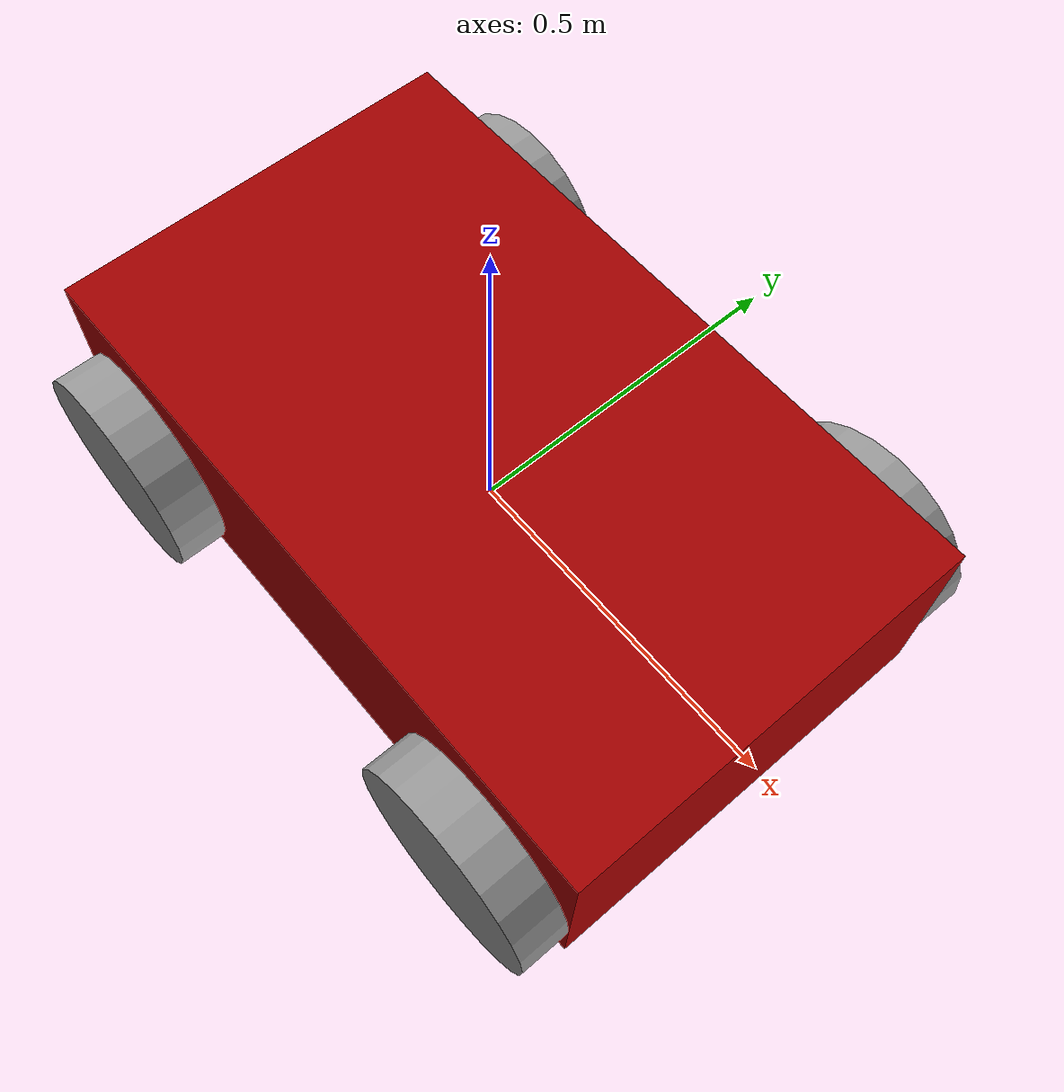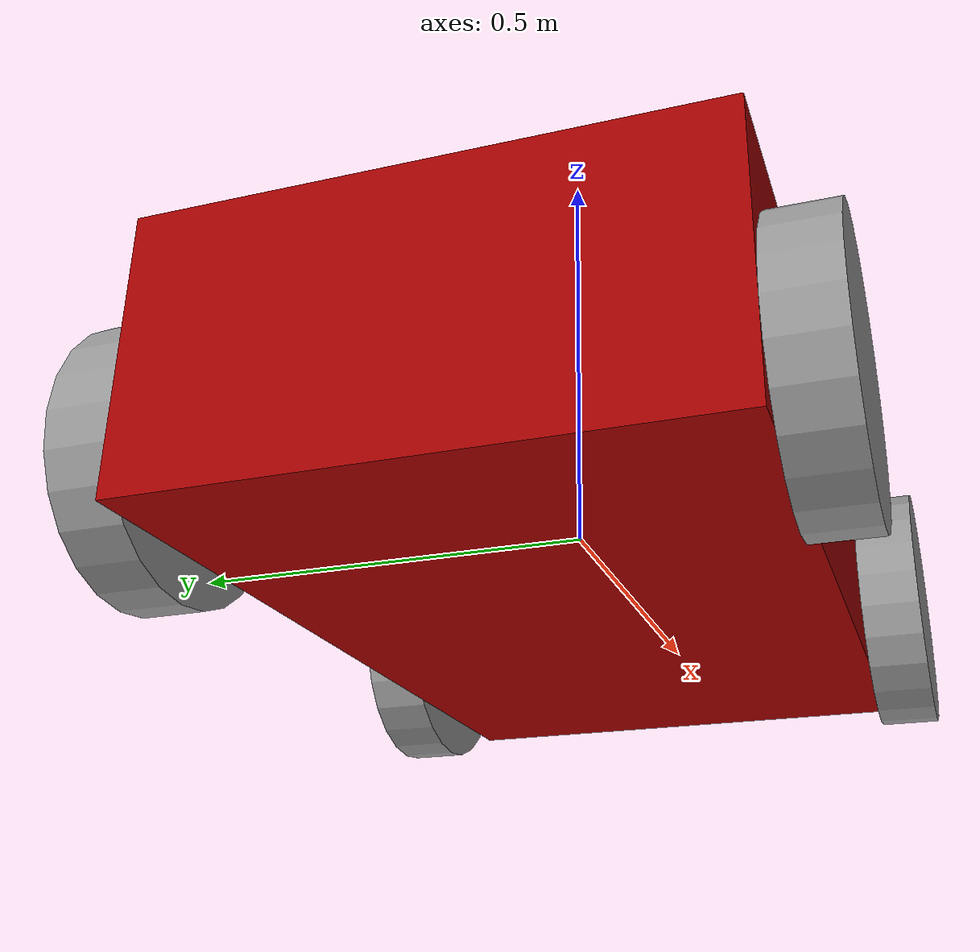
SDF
<?xml version='1.0'?>
<sdf version='1.7'>
  <model name='robot_model'>
    <link name='link_0'>
      <inertial>
        <mass>1175</mass>
        <inertia>
          <ixx>195.834</ixx>
          <ixy>0</ixy>
          <ixz>0</ixz>
          <iyy>195.834</iyy>
          <iyz>0</iyz>
          <izz>195.834</izz>
        </inertia>
        <pose>0 0 0 0 -0 0</pose>
      </inertial>
      <pose>0 0 0.04 0 -0 0</pose>
      <gravity>1</gravity>
      <self_collide>0</self_collide>
      <kinematic>0</kinematic>
      <enable_wind>0</enable_wind>
      <visual name='visual'>
        <pose>0 0 0 0 -0 0</pose>
        <geometry>
          <box>
            <size>1 0.6 0.3</size>
          </box>
        </geometry>
        <material>
          <lighting>1</lighting>
          <script>
            <uri>file://media/materials/scripts/gazebo.material</uri>
            <name>Gazebo/Grey</name>
          </script>
          <shader type='pixel'>
            <normal_map>__default__</normal_map>
          </shader>
          <ambient>1 1 1 1</ambient>
          <diffuse>0.643 0 0 1</diffuse>
          <specular>1 1 1 1</specular>
          <emissive>1 1 1 1</emissive>
        </material>
        <transparency>0</transparency>
        <cast_shadows>1</cast_shadows>
      </visual>
      <collision name='collision'>
        <laser_retro>0</laser_retro>
        <max_contacts>10</max_contacts>
        <pose>0 0 0 0 -0 0</pose>
        <geometry>
          <box>
            <size>1 0.6 0.3</size>
          </box>
        </geometry>
        <surface>
          <friction>
            <ode>
              <mu>1</mu>
              <mu2>1</mu2>
              <fdir1>0 0 0</fdir1>
              <slip1>0</slip1>
              <slip2>0</slip2>
            </ode>
            <torsional>
              <coefficient>1</coefficient>
              <patch_radius>0</patch_radius>
              <surface_radius>0</surface_radius>
              <use_patch_radius>1</use_patch_radius>
              <ode>
                <slip>0</slip>
              </ode>
            </torsional>
          </friction>
          <bounce>
            <restitution_coefficient>0</restitution_coefficient>
            <threshold>1e+06</threshold>
          </bounce>
          <contact>
            <collide_without_contact>0</collide_without_contact>
            <collide_without_contact_bitmask>1</collide_without_contact_bitmask>
            <collide_bitmask>1</collide_bitmask>
            <ode>
              <soft_cfm>0</soft_cfm>
              <soft_erp>0.2</soft_erp>
              <kp>1e+13</kp>
              <kd>1</kd>
              <max_vel>0.01</max_vel>
              <min_depth>0</min_depth>
            </ode>
            <bullet>
              <split_impulse>1</split_impulse>
              <split_impulse_penetration_threshold>-0.01</split_impulse_penetration_threshold>
              <soft_cfm>0</soft_cfm>
              <soft_erp>0.2</soft_erp>
              <kp>1e+13</kp>
              <kd>1</kd>
            </bullet>
          </contact>
        </surface>
      </collision>
    </link>
    <link name='link_2_clone'>
      <inertial>
        <mass>1</mass>
        <inertia>
          <ixx>0.145833</ixx>
          <ixy>0</ixy>
          <ixz>0</ixz>
          <iyy>0.145833</iyy>
          <iyz>0</iyz>
          <izz>0.125</izz>
        </inertia>
        <pose>0 0 0 0 -0 0</pose>
      </inertial>
      <pose>-0.35 -0.335014 -0.01 0 -0 0</pose>
      <gravity>1</gravity>
      <self_collide>0</self_collide>
      <kinematic>0</kinematic>
      <enable_wind>0</enable_wind>
      <visual name='visual'>
        <pose>0 0 0 1.5707 -0 0</pose>
        <geometry>
          <cylinder>
            <radius>0.15</radius>
            <length>0.07</length>
          </cylinder>
        </geometry>
        <material>
          <lighting>1</lighting>
          <script>
            <uri>file://media/materials/scripts/gazebo.material</uri>
            <name>Gazebo/Grey</name>
          </script>
          <shader type='pixel'>
            <normal_map>__default__</normal_map>
          </shader>
          <ambient>0 0 0 1</ambient>
          <diffuse>0 0 0 1</diffuse>
          <specular>0 0 0 1</specular>
          <emissive>0 0 0 1</emissive>
        </material>
        <transparency>0</transparency>
        <cast_shadows>1</cast_shadows>
      </visual>
      <collision name='collision'>
        <laser_retro>0</laser_retro>
        <max_contacts>10</max_contacts>
        <pose>0 0 0 1.5707 -0 0</pose>
        <geometry>
          <cylinder>
            <radius>0.15</radius>
            <length>0.07</length>
          </cylinder>
        </geometry>
        <surface>
          <friction>
            <ode>
              <mu>1</mu>
              <mu2>1</mu2>
              <fdir1>0 0 0</fdir1>
              <slip1>0</slip1>
              <slip2>0</slip2>
            </ode>
            <torsional>
              <coefficient>1</coefficient>
              <patch_radius>0</patch_radius>
              <surface_radius>0</surface_radius>
              <use_patch_radius>1</use_patch_radius>
              <ode>
                <slip>0</slip>
              </ode>
            </torsional>
          </friction>
          <bounce>
            <restitution_coefficient>0</restitution_coefficient>
            <threshold>1e+06</threshold>
          </bounce>
          <contact>
            <collide_without_contact>0</collide_without_contact>
            <collide_without_contact_bitmask>1</collide_without_contact_bitmask>
            <collide_bitmask>1</collide_bitmask>
            <ode>
              <soft_cfm>0</soft_cfm>
              <soft_erp>0.2</soft_erp>
              <kp>1e+13</kp>
              <kd>1</kd>
              <max_vel>0.01</max_vel>
              <min_depth>0</min_depth>
            </ode>
            <bullet>
              <split_impulse>1</split_impulse>
              <split_impulse_penetration_threshold>-0.01</split_impulse_penetration_threshold>
              <soft_cfm>0</soft_cfm>
              <soft_erp>0.2</soft_erp>
              <kp>1e+13</kp>
              <kd>1</kd>
            </bullet>
          </contact>
        </surface>
      </collision>
    </link>
    <link name='link_2_clone_clone'>
      <inertial>
        <mass>1</mass>
        <inertia>
          <ixx>0.145833</ixx>
          <ixy>0</ixy>
          <ixz>0</ixz>
          <iyy>0.145833</iyy>
          <iyz>0</iyz>
          <izz>0.125</izz>
        </inertia>
        <pose>0 0 0 0 -0 0</pose>
      </inertial>
      <pose>-0.35 0.335014 -0.01 0 -0 0</pose>
      <gravity>1</gravity>
      <self_collide>0</self_collide>
      <kinematic>0</kinematic>
      <enable_wind>0</enable_wind>
      <visual name='visual'>
        <pose>0 0 0 1.5707 -0 0</pose>
        <geometry>
          <cylinder>
            <radius>0.15</radius>
            <length>0.07</length>
          </cylinder>
        </geometry>
        <material>
          <lighting>1</lighting>
          <script>
            <uri>file://media/materials/scripts/gazebo.material</uri>
            <name>Gazebo/Grey</name>
          </script>
          <shader type='pixel'>
            <normal_map>__default__</normal_map>
          </shader>
          <ambient>0 0 0 1</ambient>
          <diffuse>0 0 0 1</diffuse>
          <specular>0 0 0 1</specular>
          <emissive>0 0 0 1</emissive>
        </material>
        <transparency>0</transparency>
        <cast_shadows>1</cast_shadows>
      </visual>
      <collision name='collision'>
        <laser_retro>0</laser_retro>
        <max_contacts>10</max_contacts>
        <pose>0 0 0 1.5707 -0 0</pose>
        <geometry>
          <cylinder>
            <radius>0.15</radius>
            <length>0.07</length>
          </cylinder>
        </geometry>
        <surface>
          <friction>
            <ode>
              <mu>1</mu>
              <mu2>1</mu2>
              <fdir1>0 0 0</fdir1>
              <slip1>0</slip1>
              <slip2>0</slip2>
            </ode>
            <torsional>
              <coefficient>1</coefficient>
              <patch_radius>0</patch_radius>
              <surface_radius>0</surface_radius>
              <use_patch_radius>1</use_patch_radius>
              <ode>
                <slip>0</slip>
              </ode>
            </torsional>
          </friction>
          <bounce>
            <restitution_coefficient>0</restitution_coefficient>
            <threshold>1e+06</threshold>
          </bounce>
          <contact>
            <collide_without_contact>0</collide_without_contact>
            <collide_without_contact_bitmask>1</collide_without_contact_bitmask>
            <collide_bitmask>1</collide_bitmask>
            <ode>
              <soft_cfm>0</soft_cfm>
              <soft_erp>0.2</soft_erp>
              <kp>1e+13</kp>
              <kd>1</kd>
              <max_vel>0.01</max_vel>
              <min_depth>0</min_depth>
            </ode>
            <bullet>
              <split_impulse>1</split_impulse>
              <split_impulse_penetration_threshold>-0.01</split_impulse_penetration_threshold>
              <soft_cfm>0</soft_cfm>
              <soft_erp>0.2</soft_erp>
              <kp>1e+13</kp>
              <kd>1</kd>
            </bullet>
          </contact>
        </surface>
      </collision>
    </link>
    <link name='link_2_clone_clone_0'>
      <inertial>
        <mass>1</mass>
        <inertia>
          <ixx>0.145833</ixx>
          <ixy>0</ixy>
          <ixz>0</ixz>
          <iyy>0.145833</iyy>
          <iyz>0</iyz>
          <izz>0.125</izz>
        </inertia>
        <pose>0 0 0 0 -0 0</pose>
      </inertial>
      <pose>0.35 0.335014 -0.01 0 -0 0</pose>
      <gravity>1</gravity>
      <self_collide>0</self_collide>
      <kinematic>0</kinematic>
      <enable_wind>0</enable_wind>
      <visual name='visual'>
        <pose>0 0 0 1.5707 -0 0</pose>
        <geometry>
          <cylinder>
            <radius>0.15</radius>
            <length>0.07</length>
          </cylinder>
        </geometry>
        <material>
          <lighting>1</lighting>
          <script>
            <uri>file://media/materials/scripts/gazebo.material</uri>
            <name>Gazebo/Grey</name>
          </script>
          <shader type='pixel'>
            <normal_map>__default__</normal_map>
          </shader>
          <ambient>0 0 0 1</ambient>
          <diffuse>0 0 0 1</diffuse>
          <specular>0 0 0 1</specular>
          <emissive>0 0 0 1</emissive>
        </material>
        <transparency>0</transparency>
        <cast_shadows>1</cast_shadows>
      </visual>
      <collision name='collision'>
        <laser_retro>0</laser_retro>
        <max_contacts>10</max_contacts>
        <pose>0 0 0 1.5707 -0 0</pose>
        <geometry>
          <cylinder>
            <radius>0.15</radius>
            <length>0.07</length>
          </cylinder>
        </geometry>
        <surface>
          <friction>
            <ode>
              <mu>1</mu>
              <mu2>1</mu2>
              <fdir1>0 0 0</fdir1>
              <slip1>0</slip1>
              <slip2>0</slip2>
            </ode>
            <torsional>
              <coefficient>1</coefficient>
              <patch_radius>0</patch_radius>
              <surface_radius>0</surface_radius>
              <use_patch_radius>1</use_patch_radius>
              <ode>
                <slip>0</slip>
              </ode>
            </torsional>
          </friction>
          <bounce>
            <restitution_coefficient>0</restitution_coefficient>
            <threshold>1e+06</threshold>
          </bounce>
          <contact>
            <collide_without_contact>0</collide_without_contact>
            <collide_without_contact_bitmask>1</collide_without_contact_bitmask>
            <collide_bitmask>1</collide_bitmask>
            <ode>
              <soft_cfm>0</soft_cfm>
              <soft_erp>0.2</soft_erp>
              <kp>1e+13</kp>
              <kd>1</kd>
              <max_vel>0.01</max_vel>
              <min_depth>0</min_depth>
            </ode>
            <bullet>
              <split_impulse>1</split_impulse>
              <split_impulse_penetration_threshold>-0.01</split_impulse_penetration_threshold>
              <soft_cfm>0</soft_cfm>
              <soft_erp>0.2</soft_erp>
              <kp>1e+13</kp>
              <kd>1</kd>
            </bullet>
          </contact>
        </surface>
      </collision>
    </link>
    <link name='link_2_clone_clone_0_clone'>
      <inertial>
        <mass>1</mass>
        <inertia>
          <ixx>0.145833</ixx>
          <ixy>0</ixy>
          <ixz>0</ixz>
          <iyy>0.145833</iyy>
          <iyz>0</iyz>
          <izz>0.125</izz>
        </inertia>
        <pose>0 0 0 0 -0 0</pose>
      </inertial>
      <pose>0.35 -0.335014 -0.01 0 -0 0</pose>
      <gravity>1</gravity>
      <self_collide>0</self_collide>
      <kinematic>0</kinematic>
      <enable_wind>0</enable_wind>
      <visual name='visual'>
        <pose>0 0 0 1.5707 -0 0</pose>
        <geometry>
          <cylinder>
            <radius>0.15</radius>
            <length>0.07</length>
          </cylinder>
        </geometry>
        <material>
          <lighting>1</lighting>
          <script>
            <uri>file://media/materials/scripts/gazebo.material</uri>
            <name>Gazebo/Grey</name>
          </script>
          <shader type='pixel'>
            <normal_map>__default__</normal_map>
          </shader>
          <ambient>0 0 0 1</ambient>
          <diffuse>0 0 0 1</diffuse>
          <specular>0 0 0 1</specular>
          <emissive>0 0 0 1</emissive>
        </material>
        <transparency>0</transparency>
        <cast_shadows>1</cast_shadows>
      </visual>
      <collision name='collision'>
        <laser_retro>0</laser_retro>
        <max_contacts>10</max_contacts>
        <pose>0 0 0 1.5707 -0 0</pose>
        <geometry>
          <cylinder>
            <radius>0.15</radius>
            <length>0.07</length>
          </cylinder>
        </geometry>
        <surface>
          <friction>
            <ode>
              <mu>1</mu>
              <mu2>1</mu2>
              <fdir1>0 0 0</fdir1>
              <slip1>0</slip1>
              <slip2>0</slip2>
            </ode>
            <torsional>
              <coefficient>1</coefficient>
              <patch_radius>0</patch_radius>
              <surface_radius>0</surface_radius>
              <use_patch_radius>1</use_patch_radius>
              <ode>
                <slip>0</slip>
              </ode>
            </torsional>
          </friction>
          <bounce>
            <restitution_coefficient>0</restitution_coefficient>
            <threshold>1e+06</threshold>
          </bounce>
          <contact>
            <collide_without_contact>0</collide_without_contact>
            <collide_without_contact_bitmask>1</collide_without_contact_bitmask>
            <collide_bitmask>1</collide_bitmask>
            <ode>
              <soft_cfm>0</soft_cfm>
              <soft_erp>0.2</soft_erp>
              <kp>1e+13</kp>
              <kd>1</kd>
              <max_vel>0.01</max_vel>
              <min_depth>0</min_depth>
            </ode>
            <bullet>
              <split_impulse>1</split_impulse>
              <split_impulse_penetration_threshold>-0.01</split_impulse_penetration_threshold>
              <soft_cfm>0</soft_cfm>
              <soft_erp>0.2</soft_erp>
              <kp>1e+13</kp>
              <kd>1</kd>
            </bullet>
          </contact>
        </surface>
      </collision>
    </link>
    <joint name='wheel_1' type='revolute'>
      <parent>link_0</parent>
      <child>link_2_clone_clone</child>
      <pose>0 0 0 0 -0 0</pose>
      <axis>
        <xyz>1 0 0</xyz>
        <limit>
          <lower>-1.79769e+308</lower>
          <upper>1.79769e+308</upper>
          <effort>-1</effort>
          <velocity>-1</velocity>
        </limit>
        <dynamics>
          <spring_reference>0</spring_reference>
          <spring_stiffness>0</spring_stiffness>
          <damping>0</damping>
          <friction>0</friction>
        </dynamics>
      </axis>
      <physics>
        <ode>
          <limit>
            <cfm>0</cfm>
            <erp>0.2</erp>
          </limit>
          <suspension>
            <cfm>0</cfm>
            <erp>0.2</erp>
          </suspension>
        </ode>
      </physics>
    </joint>
    <joint name='wheel_3' type='revolute'>
      <parent>link_0</parent>
      <child>link_2_clone_clone_0</child>
      <pose>0 0 0 0 -0 0</pose>
      <axis>
        <xyz>1 0 0</xyz>
        <limit>
          <lower>-1.79769e+308</lower>
          <upper>1.79769e+308</upper>
          <effort>-1</effort>
          <velocity>-1</velocity>
        </limit>
        <dynamics>
          <spring_reference>0</spring_reference>
          <spring_stiffness>0</spring_stiffness>
          <damping>0</damping>
          <friction>0</friction>
        </dynamics>
      </axis>
      <physics>
        <ode>
          <limit>
            <cfm>0</cfm>
            <erp>0.2</erp>
          </limit>
          <suspension>
            <cfm>0</cfm>
            <erp>0.2</erp>
          </suspension>
        </ode>
      </physics>
    </joint>
    <joint name='wheel_2' type='revolute'>
      <parent>link_0</parent>
      <child>link_2_clone</child>
      <pose>0 0 0 0 -0 0</pose>
      <axis>
        <xyz>1 0 0</xyz>
        <limit>
          <lower>-1.79769e+308</lower>
          <upper>1.79769e+308</upper>
          <effort>-1</effort>
          <velocity>-1</velocity>
        </limit>
        <dynamics>
          <spring_reference>0</spring_reference>
          <spring_stiffness>0</spring_stiffness>
          <damping>0</damping>
          <friction>0</friction>
        </dynamics>
      </axis>
      <physics>
        <ode>
          <limit>
            <cfm>0</cfm>
            <erp>0.2</erp>
          </limit>
          <suspension>
            <cfm>0</cfm>
            <erp>0.2</erp>
          </suspension>
        </ode>
      </physics>
    </joint>
    <joint name='lwheel_4' type='revolute'>
      <parent>link_0</parent>
      <child>link_2_clone_clone_0_clone</child>
      <pose>0 0 0 0 -0 0</pose>
      <axis>
        <xyz>1 0 0</xyz>
        <limit>
          <lower>-1.79769e+308</lower>
          <upper>1.79769e+308</upper>
          <effort>-1</effort>
          <velocity>-1</velocity>
        </limit>
        <dynamics>
          <spring_reference>0</spring_reference>
          <spring_stiffness>0</spring_stiffness>
          <damping>0</damping>
          <friction>0</friction>
        </dynamics>
      </axis>
      <physics>
        <ode>
          <limit>
            <cfm>0</cfm>
            <erp>0.2</erp>
          </limit>
          <suspension>
            <cfm>0</cfm>
            <erp>0.2</erp>
          </suspension>
        </ode>
      </physics>
    </joint>
    <static>0</static>
    <allow_auto_disable>1</allow_auto_disable>
  </model>
</sdf>
